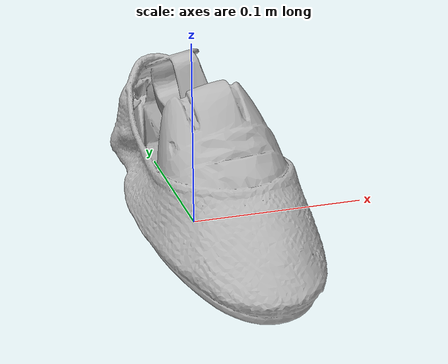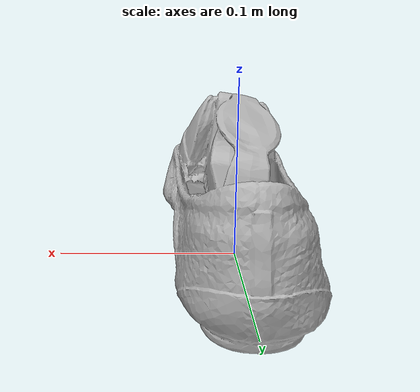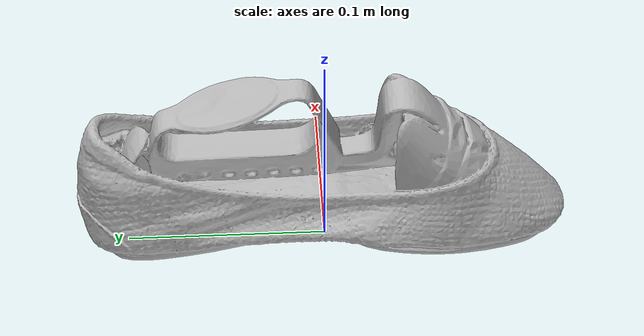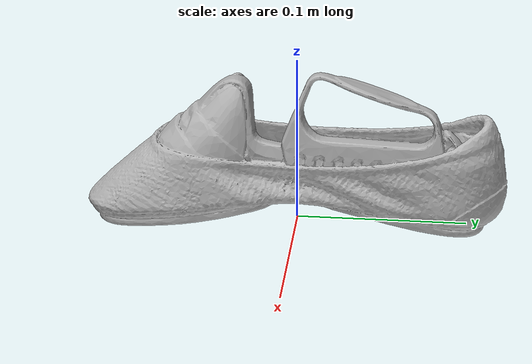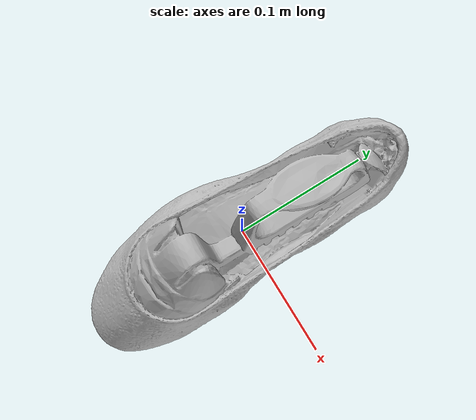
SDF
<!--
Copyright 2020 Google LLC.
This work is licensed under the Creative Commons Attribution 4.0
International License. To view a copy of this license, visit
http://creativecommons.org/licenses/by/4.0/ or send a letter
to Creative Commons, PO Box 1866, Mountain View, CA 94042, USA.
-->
<?xml version="1.0" ?>
<sdf version="1.6">
  <model name="Copperhead_Snake_Tieks_Brown_Snake_Print_Ballet_Flats">
    <link name="link_0">
      <visual name="visual">
        <geometry>
          <mesh>
            <uri>meshes/model.obj</uri>
          </mesh>
        </geometry>
      </visual>
      <collision name="collision_0">
        <geometry>
          <mesh>
            <uri>meshes/model.obj</uri>
          </mesh>
        </geometry>
      </collision>
    </link>
  </model>
</sdf>
